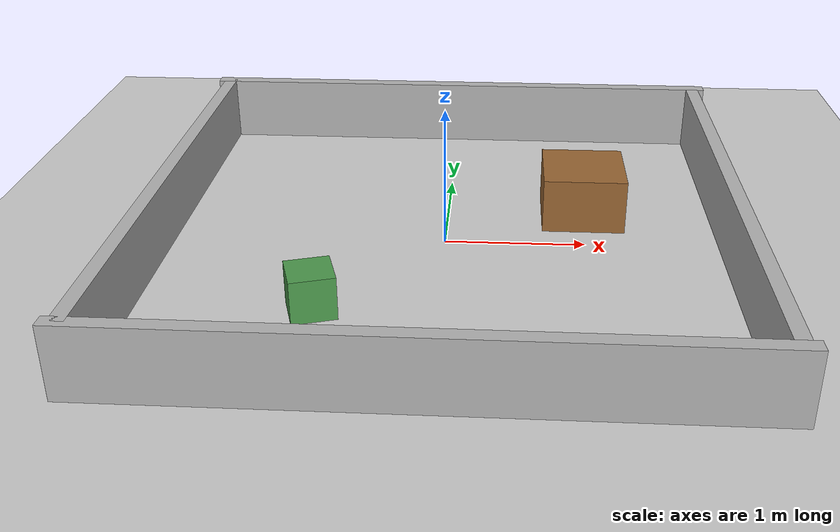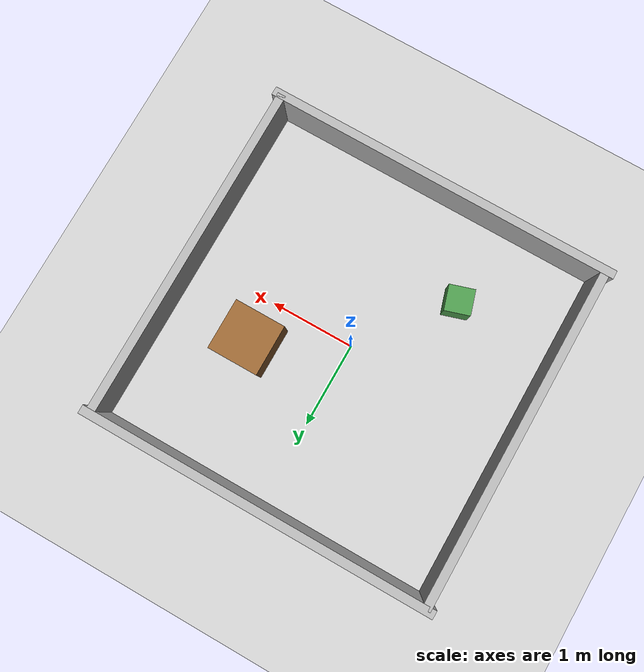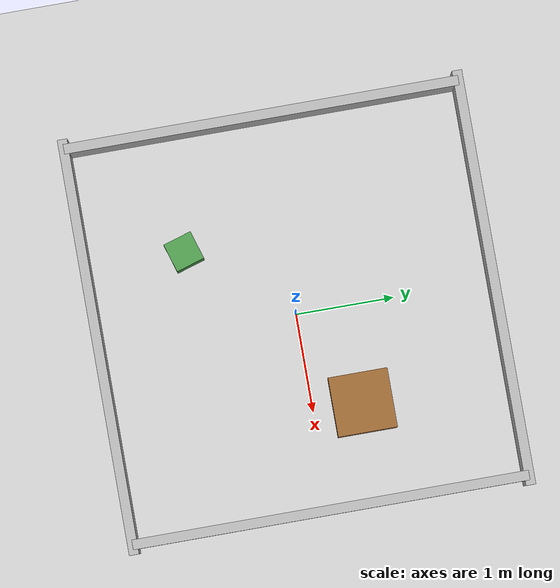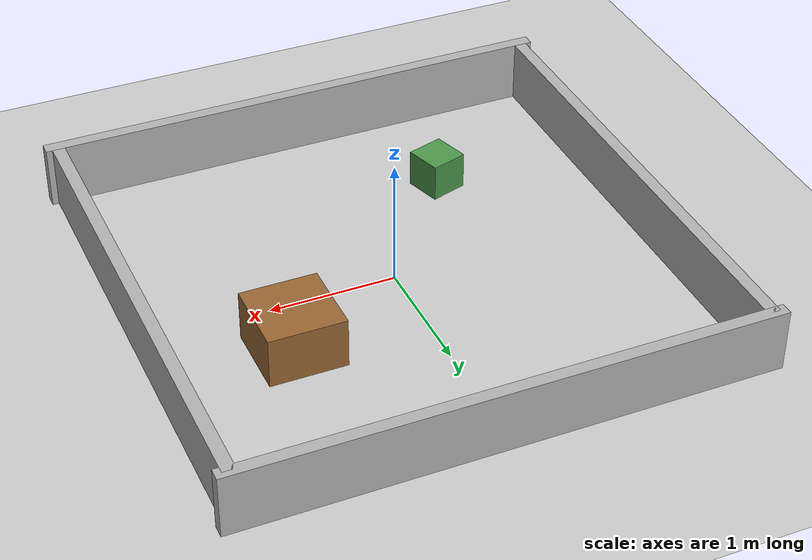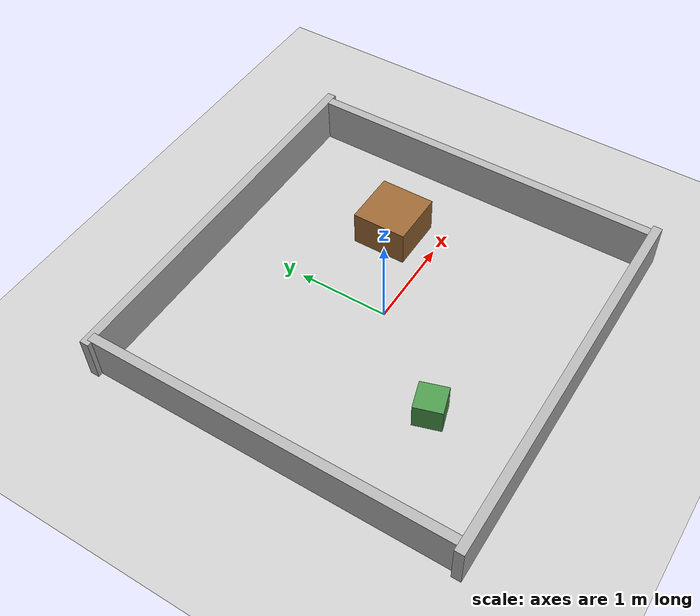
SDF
<?xml version="1.0" ?>
<!--
  Simple house world for Gazebo Fortress simulation.
  A small room with walls for SLAM testing.
-->
<sdf version="1.8">
  <world name="house">

    <!-- Physics -->
    <physics name="1ms" type="ignored">
      <max_step_size>0.001</max_step_size>
      <real_time_factor>1.0</real_time_factor>
    </physics>

    <!-- Plugins -->
    <plugin filename="gz-sim-physics-system"
            name="gz::sim::systems::Physics"/>
    <plugin filename="gz-sim-user-commands-system"
            name="gz::sim::systems::UserCommands"/>
    <plugin filename="gz-sim-scene-broadcaster-system"
            name="gz::sim::systems::SceneBroadcaster"/>
    <plugin filename="gz-sim-sensors-system"
            name="gz::sim::systems::Sensors">
      <render_engine>ogre2</render_engine>
    </plugin>
    <plugin filename="gz-sim-contact-system"
            name="gz::sim::systems::Contact"/>

    <!-- Lighting -->
    <light type="directional" name="sun">
      <cast_shadows>true</cast_shadows>
      <pose>0 0 10 0 0 0</pose>
      <diffuse>0.8 0.8 0.8 1</diffuse>
      <specular>0.2 0.2 0.2 1</specular>
      <attenuation>
        <range>1000</range>
        <constant>0.9</constant>
        <linear>0.01</linear>
        <quadratic>0.001</quadratic>
      </attenuation>
      <direction>-0.5 0.1 -0.9</direction>
    </light>

    <!-- Ground plane -->
    <model name="ground_plane">
      <static>true</static>
      <link name="link">
        <collision name="collision">
          <geometry>
            <plane>
              <normal>0 0 1</normal>
              <size>20 20</size>
            </plane>
          </geometry>
        </collision>
        <visual name="visual">
          <geometry>
            <plane>
              <normal>0 0 1</normal>
              <size>20 20</size>
            </plane>
          </geometry>
          <material>
            <ambient>0.8 0.8 0.8 1</ambient>
            <diffuse>0.8 0.8 0.8 1</diffuse>
          </material>
        </visual>
      </link>
    </model>

    <!-- ── Room walls (4m x 4m) ──────────────────────────── -->
    <!-- Wall macro: a box 0.1m thick, 0.5m tall -->

    <!-- North wall -->
    <model name="wall_north">
      <static>true</static>
      <pose>0 2 0.25 0 0 0</pose>
      <link name="link">
        <collision name="collision">
          <geometry><box><size>4.2 0.1 0.5</size></box></geometry>
        </collision>
        <visual name="visual">
          <geometry><box><size>4.2 0.1 0.5</size></box></geometry>
          <material>
            <ambient>0.7 0.7 0.7 1</ambient>
            <diffuse>0.7 0.7 0.7 1</diffuse>
          </material>
        </visual>
      </link>
    </model>

    <!-- South wall -->
    <model name="wall_south">
      <static>true</static>
      <pose>0 -2 0.25 0 0 0</pose>
      <link name="link">
        <collision name="collision">
          <geometry><box><size>4.2 0.1 0.5</size></box></geometry>
        </collision>
        <visual name="visual">
          <geometry><box><size>4.2 0.1 0.5</size></box></geometry>
          <material>
            <ambient>0.7 0.7 0.7 1</ambient>
            <diffuse>0.7 0.7 0.7 1</diffuse>
          </material>
        </visual>
      </link>
    </model>

    <!-- East wall -->
    <model name="wall_east">
      <static>true</static>
      <pose>2 0 0.25 0 0 0</pose>
      <link name="link">
        <collision name="collision">
          <geometry><box><size>0.1 4.0 0.5</size></box></geometry>
        </collision>
        <visual name="visual">
          <geometry><box><size>0.1 4.0 0.5</size></box></geometry>
          <material>
            <ambient>0.7 0.7 0.7 1</ambient>
            <diffuse>0.7 0.7 0.7 1</diffuse>
          </material>
        </visual>
      </link>
    </model>

    <!-- West wall -->
    <model name="wall_west">
      <static>true</static>
      <pose>-2 0 0.25 0 0 0</pose>
      <link name="link">
        <collision name="collision">
          <geometry><box><size>0.1 4.0 0.5</size></box></geometry>
        </collision>
        <visual name="visual">
          <geometry><box><size>0.1 4.0 0.5</size></box></geometry>
          <material>
            <ambient>0.7 0.7 0.7 1</ambient>
            <diffuse>0.7 0.7 0.7 1</diffuse>
          </material>
        </visual>
      </link>
    </model>

    <!-- ── Interior obstacles ────────────────────────────── -->
    <!-- Table -->
    <model name="table">
      <static>true</static>
      <pose>1.0 0.5 0.2 0 0 0</pose>
      <link name="link">
        <collision name="collision">
          <geometry><box><size>0.6 0.6 0.4</size></box></geometry>
        </collision>
        <visual name="visual">
          <geometry><box><size>0.6 0.6 0.4</size></box></geometry>
          <material>
            <ambient>0.6 0.4 0.2 1</ambient>
            <diffuse>0.6 0.4 0.2 1</diffuse>
          </material>
        </visual>
      </link>
    </model>

    <!-- Box obstacle -->
    <model name="box1">
      <static>true</static>
      <pose>-0.8 -1.0 0.15 0 0 0.3</pose>
      <link name="link">
        <collision name="collision">
          <geometry><box><size>0.3 0.3 0.3</size></box></geometry>
        </collision>
        <visual name="visual">
          <geometry><box><size>0.3 0.3 0.3</size></box></geometry>
          <material>
            <ambient>0.3 0.6 0.3 1</ambient>
            <diffuse>0.3 0.6 0.3 1</diffuse>
          </material>
        </visual>
      </link>
    </model>

  </world>
</sdf>
